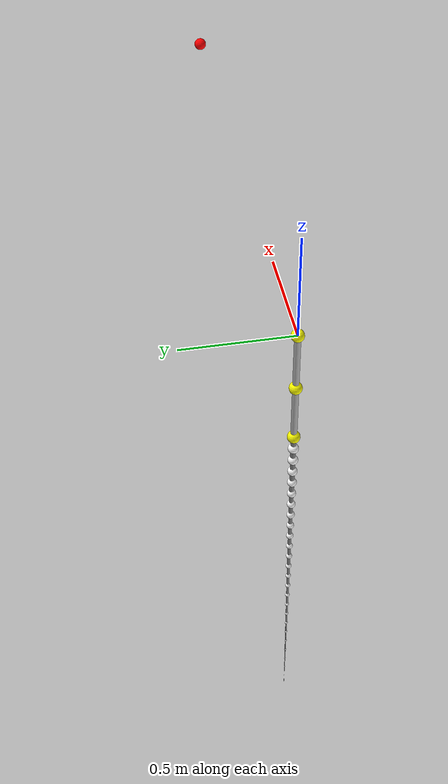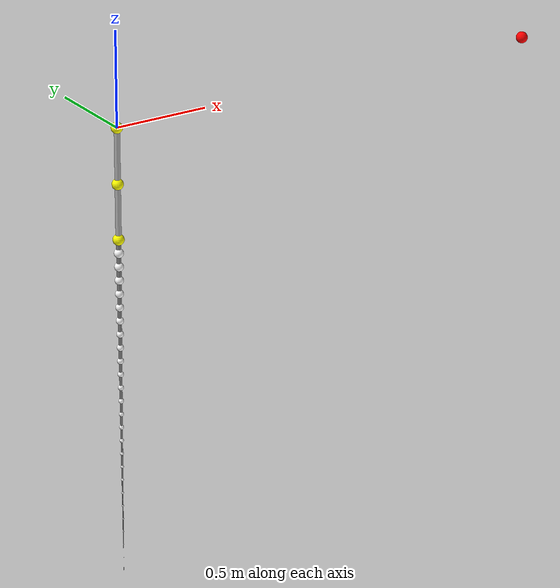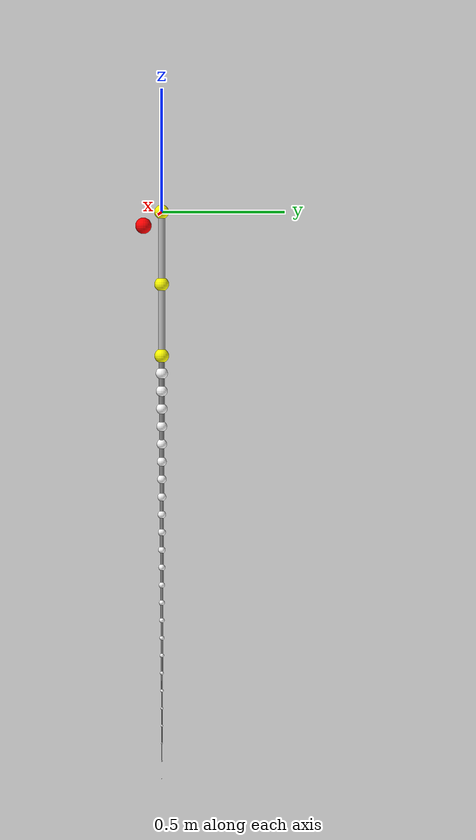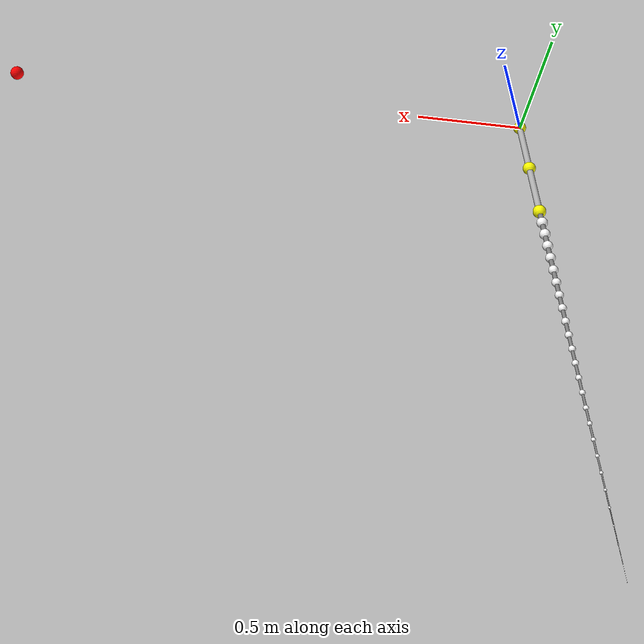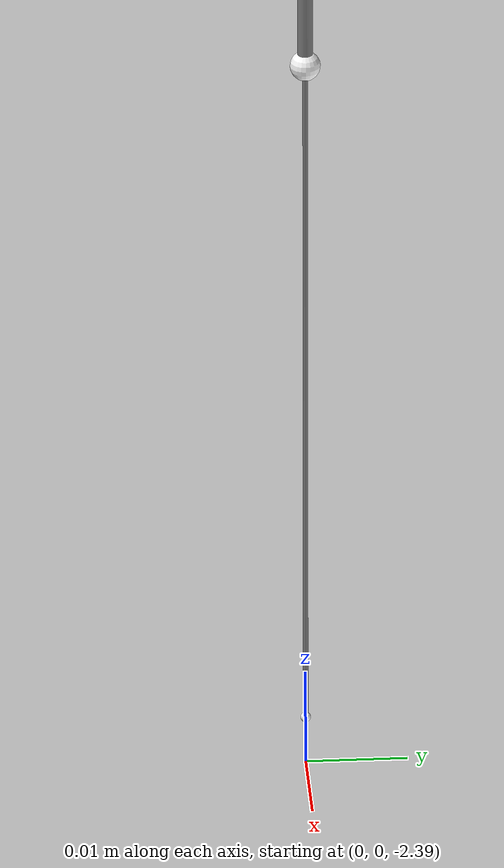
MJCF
<mujoco model="5_3D_model_w_N25_linear">
  <compiler inertiafromgeom="auto" angle="radian" />
   <option timestep="0.0001" iterations="50" solver="PGS" integrator="Euler" gravity="0 0 -9.81" collision="all">
     <flag energy="enable" />
   </option>
   <asset>
     <texture type="skybox" builtin="flat" rgb1="1 1 1" rgb2="1 1 1" width="100" height="100" />
      <material name="JointColor" rgba="1.0 1.0 0.0 1" />
      <material name="LimbColor" rgba="0.7 0.7 0.7 1" />
      <material name="pointMassColor" rgba="1.0 1.0 1.0 1.0" />
      <material name="RefMassColor" rgba="0.2 0.9 0.1 1.0" />
   </asset>
   <worldbody>
     <body name="cameramover" mocap="true" pos="0 0 0">
        <camera name="mycamera" pos="0.0 2.0 2.0" euler="1.5707 0 0" />
      </body>
      <body name="body_upper_arm" pos="0 0 0" euler="0 0 0">
        <inertial pos="0 0 -0.129" mass="1.595" diaginertia="0.011917 0.011937 0.001325" />
         <geom name="geom_shoulder" type="sphere" pos="0 0 0" material="JointColor" size="0.0294" mass="0" />
         <joint name="joint_shoulder_flex_ext" ref="0" type="hinge" stiffness="0" pos = "0 0 0" axis = "0 -1 0" />
         <joint name='joint_shoulder_add_abd' ref='0'  type='hinge' stiffness='0' pos='0 0 0' axis='-1 0 0' />
         <joint name='joint_shoulder_med_lat' ref='0'  type='hinge' stiffness='0' pos='0 0 0' axis=' 0 0 1' />
         <site name="site_upper_arm_COM" pos="0 0 -0.129" />
         <geom type="cylinder" fromto="0 0 0 0 0 -0.294" material="LimbColor" mass="0" size="0.0147" />
         <body name="body_fore_arm" pos="0 0 -0.294" euler="0 0 0">
           <inertial pos="0 0 -0.112" mass="0.869" diaginertia="0.004765 0.004855 0.000472" />
            <geom name="geom_elbow" type="sphere" pos="0 0 0" material="JointColor" size="0.0294" mass="0" />
            <joint name="joint_elbow" ref="0" type="hinge" stiffness="0" pos="0 0 0" axis="0 -1 0" />
            <geom type="cylinder" fromto="0 0 0 0 0 -0.291" material="LimbColor" mass="0" size="0.0147" />
            <site name="site_fore_arm_COM" pos="0 0 -0.112" />
            <geom name="geom_end_effector" type="sphere" pos="0 0 -0.291" material="JointColor" size="0.0294" mass="0" />
            <body name="body_node1" euler="0 0 0" pos="0 0 -0.291">
              <joint name="joint_node1_X" type="hinge" axis="1 0 0" pos="0 0 0" springref="0" stiffness="0" damping="0" />
               <joint name="joint_node1_Y" type="hinge" axis="0 -1 0" pos="0 0 0" springref="0" stiffness="0" damping="0" />
               <geom type="cylinder" fromto="0 0 0 0 0 -0.0720" size="0.0122176" mass="0" />
               <geom name="geom_1" type="sphere" material="pointMassColor" pos="0 0 -0.0720" size="0.0244352" mass="0.0345792" />
               <body name="body_node2" euler="0 0 0" pos="0 0 -0.0720">
                 <joint name="joint_node2_X" type="hinge" axis="1 0 0" pos="0 0 0" springref="0" stiffness="0.6415903999999999" damping="0.24391039999999997" />
                  <joint name="joint_node2_Y" type="hinge" axis="0 -1 0" pos="0 0 0" springref="0" stiffness="0.6415903999999999" damping="0.24391039999999997" />
                  <geom type="cylinder" fromto="0 0 0 0 0 -0.0720" size="0.0117189" mass="0" />
                  <geom name="geom_2" type="sphere" material="pointMassColor" pos="0 0 -0.0720" size="0.0234379" mass="0.0318144" />
                  <body name="body_node3" euler="0 0 0" pos="0 0 -0.0720">
                    <joint name="joint_node3_X" type="hinge" axis="1 0 0" pos="0 0 0" springref="0" stiffness="0.5881568" damping="0.2235968" />
                     <joint name="joint_node3_Y" type="hinge" axis="0 -1 0" pos="0 0 0" springref="0" stiffness="0.5881568" damping="0.2235968" />
                     <geom type="cylinder" fromto="0 0 0 0 0 -0.0720" size="0.0112203" mass="0" />
                     <geom name="geom_3" type="sphere" material="pointMassColor" pos="0 0 -0.0720" size="0.0224405" mass="0.0291648" />
                     <body name="body_node4" euler="0 0 0" pos="0 0 -0.0720">
                       <joint name="joint_node4_X" type="hinge" axis="1 0 0" pos="0 0 0" springref="0" stiffness="0.5370463999999999" damping="0.20416639999999997" />
                        <joint name="joint_node4_Y" type="hinge" axis="0 -1 0" pos="0 0 0" springref="0" stiffness="0.5370463999999999" damping="0.20416639999999997" />
                        <geom type="cylinder" fromto="0 0 0 0 0 -0.0720" size="0.0107216" mass="0" />
                        <geom name="geom_4" type="sphere" material="pointMassColor" pos="0 0 -0.0720" size="0.0214431" mass="0.0266304" />
                        <body name="body_node5" euler="0 0 0" pos="0 0 -0.0720">
                          <joint name="joint_node5_X" type="hinge" axis="1 0 0" pos="0 0 0" springref="0" stiffness="0.4882591999999999" damping="0.18561919999999998" />
                           <joint name="joint_node5_Y" type="hinge" axis="0 -1 0" pos="0 0 0" springref="0" stiffness="0.4882591999999999" damping="0.18561919999999998" />
                           <geom type="cylinder" fromto="0 0 0 0 0 -0.0720" size="0.0102229" mass="0" />
                           <geom name="geom_5" type="sphere" material="pointMassColor" pos="0 0 -0.0720" size="0.0204458" mass="0.0242112" />
                           <body name="body_node6" euler="0 0 0" pos="0 0 -0.0720">
                             <joint name="joint_node6_X" type="hinge" axis="1 0 0" pos="0 0 0" springref="0" stiffness="0.44179519999999994" damping="0.16795519999999997" />
                              <joint name="joint_node6_Y" type="hinge" axis="0 -1 0" pos="0 0 0" springref="0" stiffness="0.44179519999999994" damping="0.16795519999999997" />
                              <geom type="cylinder" fromto="0 0 0 0 0 -0.0720" size="0.0097242" mass="0" />
                              <geom name="geom_6" type="sphere" material="pointMassColor" pos="0 0 -0.0720" size="0.0194484" mass="0.0219072" />
                              <body name="body_node7" euler="0 0 0" pos="0 0 -0.0720">
                                <joint name="joint_node7_X" type="hinge" axis="1 0 0" pos="0 0 0" springref="0" stiffness="0.3976544" damping="0.15117440000000001" />
                                 <joint name="joint_node7_Y" type="hinge" axis="0 -1 0" pos="0 0 0" springref="0" stiffness="0.3976544" damping="0.15117440000000001" />
                                 <geom type="cylinder" fromto="0 0 0 0 0 -0.0720" size="0.0092255" mass="0" />
                                 <geom name="geom_7" type="sphere" material="pointMassColor" pos="0 0 -0.0720" size="0.0184511" mass="0.0197184" />
                                 <body name="body_node8" euler="0 0 0" pos="0 0 -0.0720">
                                   <joint name="joint_node8_X" type="hinge" axis="1 0 0" pos="0 0 0" springref="0" stiffness="0.3558368000000003" damping="0.13527680000000009" />
                                    <joint name="joint_node8_Y" type="hinge" axis="0 -1 0" pos="0 0 0" springref="0" stiffness="0.3558368000000003" damping="0.13527680000000009" />
                                    <geom type="cylinder" fromto="0 0 0 0 0 -0.0720" size="0.0087269" mass="0" />
                                    <geom name="geom_8" type="sphere" material="pointMassColor" pos="0 0 -0.0720" size="0.0174537" mass="0.0176448" />
                                    <body name="body_node9" euler="0 0 0" pos="0 0 -0.0720">
                                      <joint name="joint_node9_X" type="hinge" axis="1 0 0" pos="0 0 0" springref="0" stiffness="0.3163424000000002" damping="0.12026240000000007" />
                                       <joint name="joint_node9_Y" type="hinge" axis="0 -1 0" pos="0 0 0" springref="0" stiffness="0.3163424000000002" damping="0.12026240000000007" />
                                       <geom type="cylinder" fromto="0 0 0 0 0 -0.0720" size="0.0082282" mass="0" />
                                       <geom name="geom_9" type="sphere" material="pointMassColor" pos="0 0 -0.0720" size="0.0164564" mass="0.0156864" />
                                       <body name="body_node10" euler="0 0 0" pos="0 0 -0.0720">
                                         <joint name="joint_node10_X" type="hinge" axis="1 0 0" pos="0 0 0" springref="0" stiffness="0.2791711999999996" damping="0.10613119999999986" />
                                          <joint name="joint_node10_Y" type="hinge" axis="0 -1 0" pos="0 0 0" springref="0" stiffness="0.2791711999999996" damping="0.10613119999999986" />
                                          <geom type="cylinder" fromto="0 0 0 0 0 -0.0720" size="0.0077295" mass="0" />
                                          <geom name="geom_10" type="sphere" material="pointMassColor" pos="0 0 -0.0720" size="0.0154590" mass="0.0138432" />
                                          <body name="body_node11" euler="0 0 0" pos="0 0 -0.0720">
                                            <joint name="joint_node11_X" type="hinge" axis="1 0 0" pos="0 0 0" springref="0" stiffness="0.24432320000000013" damping="0.09288320000000005" />
                                             <joint name="joint_node11_Y" type="hinge" axis="0 -1 0" pos="0 0 0" springref="0" stiffness="0.24432320000000013" damping="0.09288320000000005" />
                                             <geom type="cylinder" fromto="0 0 0 0 0 -0.0720" size="0.0072308" mass="0" />
                                             <geom name="geom_11" type="sphere" material="pointMassColor" pos="0 0 -0.0720" size="0.0144617" mass="0.0121152" />
                                             <body name="body_node12" euler="0 0 0" pos="0 0 -0.0720">
                                               <joint name="joint_node12_X" type="hinge" axis="1 0 0" pos="0 0 0" springref="0" stiffness="0.21179840000000016" damping="0.08051840000000006" />
                                                <joint name="joint_node12_Y" type="hinge" axis="0 -1 0" pos="0 0 0" springref="0" stiffness="0.21179840000000016" damping="0.08051840000000006" />
                                                <geom type="cylinder" fromto="0 0 0 0 0 -0.0720" size="0.0067322" mass="0" />
                                                <geom name="geom_12" type="sphere" material="pointMassColor" pos="0 0 -0.0720" size="0.0134643" mass="0.0105024" />
                                                <body name="body_node13" euler="0 0 0" pos="0 0 -0.0720">
                                                  <joint name="joint_node13_X" type="hinge" axis="1 0 0" pos="0 0 0" springref="0" stiffness="0.1815968000000001" damping="0.06903680000000004" />
                                                   <joint name="joint_node13_Y" type="hinge" axis="0 -1 0" pos="0 0 0" springref="0" stiffness="0.1815968000000001" damping="0.06903680000000004" />
                                                   <geom type="cylinder" fromto="0 0 0 0 0 -0.0720" size="0.0062335" mass="0" />
                                                   <geom name="geom_13" type="sphere" material="pointMassColor" pos="0 0 -0.0720" size="0.0124669" mass="0.0090048" />
                                                   <body name="body_node14" euler="0 0 0" pos="0 0 -0.0720">
                                                     <joint name="joint_node14_X" type="hinge" axis="1 0 0" pos="0 0 0" springref="0" stiffness="0.15371840000000014" damping="0.05843840000000006" />
                                                      <joint name="joint_node14_Y" type="hinge" axis="0 -1 0" pos="0 0 0" springref="0" stiffness="0.15371840000000014" damping="0.05843840000000006" />
                                                      <geom type="cylinder" fromto="0 0 0 0 0 -0.0720" size="0.0057348" mass="0" />
                                                      <geom name="geom_14" type="sphere" material="pointMassColor" pos="0 0 -0.0720" size="0.0114696" mass="0.0076224" />
                                                      <body name="body_node15" euler="0 0 0" pos="0 0 -0.0720">
                                                        <joint name="joint_node15_X" type="hinge" axis="1 0 0" pos="0 0 0" springref="0" stiffness="0.12816320000000012" damping="0.04872320000000004" />
                                                         <joint name="joint_node15_Y" type="hinge" axis="0 -1 0" pos="0 0 0" springref="0" stiffness="0.12816320000000012" damping="0.04872320000000004" />
                                                         <geom type="cylinder" fromto="0 0 0 0 0 -0.0720" size="0.0052361" mass="0" />
                                                         <geom name="geom_15" type="sphere" material="pointMassColor" pos="0 0 -0.0720" size="0.0104722" mass="0.0063552" />
                                                         <body name="body_node16" euler="0 0 0" pos="0 0 -0.0720">
                                                           <joint name="joint_node16_X" type="hinge" axis="1 0 0" pos="0 0 0" springref="0" stiffness="0.10493120000000007" damping="0.03989120000000002" />
                                                            <joint name="joint_node16_Y" type="hinge" axis="0 -1 0" pos="0 0 0" springref="0" stiffness="0.10493120000000007" damping="0.03989120000000002" />
                                                            <geom type="cylinder" fromto="0 0 0 0 0 -0.0720" size="0.0047374" mass="0" />
                                                            <geom name="geom_16" type="sphere" material="pointMassColor" pos="0 0 -0.0720" size="0.0094749" mass="0.0052032" />
                                                            <body name="body_node17" euler="0 0 0" pos="0 0 -0.0720">
                                                              <joint name="joint_node17_X" type="hinge" axis="1 0 0" pos="0 0 0" springref="0" stiffness="0.08402240000000002" damping="0.03194240000000001" />
                                                               <joint name="joint_node17_Y" type="hinge" axis="0 -1 0" pos="0 0 0" springref="0" stiffness="0.08402240000000002" damping="0.03194240000000001" />
                                                               <geom type="cylinder" fromto="0 0 0 0 0 -0.0720" size="0.0042388" mass="0" />
                                                               <geom name="geom_17" type="sphere" material="pointMassColor" pos="0 0 -0.0720" size="0.0084775" mass="0.0041664" />
                                                               <body name="body_node18" euler="0 0 0" pos="0 0 -0.0720">
                                                                 <joint name="joint_node18_X" type="hinge" axis="1 0 0" pos="0 0 0" springref="0" stiffness="0.06543680000000003" damping="0.024876800000000008" />
                                                                  <joint name="joint_node18_Y" type="hinge" axis="0 -1 0" pos="0 0 0" springref="0" stiffness="0.06543680000000003" damping="0.024876800000000008" />
                                                                  <geom type="cylinder" fromto="0 0 0 0 0 -0.0720" size="0.0037401" mass="0" />
                                                                  <geom name="geom_18" type="sphere" material="pointMassColor" pos="0 0 -0.0720" size="0.0074802" mass="0.0032448" />
                                                                  <body name="body_node19" euler="0 0 0" pos="0 0 -0.0720">
                                                                    <joint name="joint_node19_X" type="hinge" axis="1 0 0" pos="0 0 0" springref="0" stiffness="0.049174400000000035" damping="0.018694400000000014" />
                                                                     <joint name="joint_node19_Y" type="hinge" axis="0 -1 0" pos="0 0 0" springref="0" stiffness="0.049174400000000035" damping="0.018694400000000014" />
                                                                     <geom type="cylinder" fromto="0 0 0 0 0 -0.0720" size="0.0032414" mass="0" />
                                                                     <geom name="geom_19" type="sphere" material="pointMassColor" pos="0 0 -0.0720" size="0.0064828" mass="0.0024384" />
                                                                     <body name="body_node20" euler="0 0 0" pos="0 0 -0.0720">
                                                                       <joint name="joint_node20_X" type="hinge" axis="1 0 0" pos="0 0 0" springref="0" stiffness="0.03523520000000002" damping="0.013395200000000008" />
                                                                        <joint name="joint_node20_Y" type="hinge" axis="0 -1 0" pos="0 0 0" springref="0" stiffness="0.03523520000000002" damping="0.013395200000000008" />
                                                                        <geom type="cylinder" fromto="0 0 0 0 0 -0.0720" size="0.0027427" mass="0" />
                                                                        <geom name="geom_20" type="sphere" material="pointMassColor" pos="0 0 -0.0720" size="0.0054855" mass="0.0017472" />
                                                                        <body name="body_node21" euler="0 0 0" pos="0 0 -0.0720">
                                                                          <joint name="joint_node21_X" type="hinge" axis="1 0 0" pos="0 0 0" springref="0" stiffness="0.0236192" damping="0.0089792" />
                                                                           <joint name="joint_node21_Y" type="hinge" axis="0 -1 0" pos="0 0 0" springref="0" stiffness="0.0236192" damping="0.0089792" />
                                                                           <geom type="cylinder" fromto="0 0 0 0 0 -0.0720" size="0.0022441" mass="0" />
                                                                           <geom name="geom_21" type="sphere" material="pointMassColor" pos="0 0 -0.0720" size="0.0044881" mass="0.0011712" />
                                                                           <body name="body_node22" euler="0 0 0" pos="0 0 -0.0720">
                                                                             <joint name="joint_node22_X" type="hinge" axis="1 0 0" pos="0 0 0" springref="0" stiffness="0.014326400000000017" damping="0.005446400000000007" />
                                                                              <joint name="joint_node22_Y" type="hinge" axis="0 -1 0" pos="0 0 0" springref="0" stiffness="0.014326400000000017" damping="0.005446400000000007" />
                                                                              <geom type="cylinder" fromto="0 0 0 0 0 -0.0720" size="0.0017454" mass="0" />
                                                                              <geom name="geom_22" type="sphere" material="pointMassColor" pos="0 0 -0.0720" size="0.0034907" mass="0.0007104" />
                                                                              <body name="body_node23" euler="0 0 0" pos="0 0 -0.0720">
                                                                                <joint name="joint_node23_X" type="hinge" axis="1 0 0" pos="0 0 0" springref="0" stiffness="0.007356800000000006" damping="0.002796800000000002" />
                                                                                 <joint name="joint_node23_Y" type="hinge" axis="0 -1 0" pos="0 0 0" springref="0" stiffness="0.007356800000000006" damping="0.002796800000000002" />
                                                                                 <geom type="cylinder" fromto="0 0 0 0 0 -0.0720" size="0.0012467" mass="0" />
                                                                                 <geom name="geom_23" type="sphere" material="pointMassColor" pos="0 0 -0.0720" size="0.0024934" mass="0.0003648" />
                                                                                 <body name="body_node24" euler="0 0 0" pos="0 0 -0.0720">
                                                                                   <joint name="joint_node24_X" type="hinge" axis="1 0 0" pos="0 0 0" springref="0" stiffness="0.002710400000000001" damping="0.0010304000000000003" />
                                                                                    <joint name="joint_node24_Y" type="hinge" axis="0 -1 0" pos="0 0 0" springref="0" stiffness="0.002710400000000001" damping="0.0010304000000000003" />
                                                                                    <geom type="cylinder" fromto="0 0 0 0 0 -0.0720" size="0.0007480" mass="0" />
                                                                                    <geom name="geom_24" type="sphere" material="pointMassColor" pos="0 0 -0.0720" size="0.0014960" mass="0.0001344" />
                                                                                    <body name="body_node25" euler="0 0 0" pos="0 0 -0.0720">
                                                                                      <joint name="joint_node25_X" type="hinge" axis="1 0 0" pos="0 0 0" springref="0" stiffness="0.0003871999999999983" damping="0.00014719999999999935" />
                                                                                       <joint name="joint_node25_Y" type="hinge" axis="0 -1 0" pos="0 0 0" springref="0" stiffness="0.0003871999999999983" damping="0.00014719999999999935" />
                                                                                       <geom type="cylinder" fromto="0 0 0 0 0 -0.0720" size="0.0002493" mass="0" />
                                                                                       <geom name="geom_25_tip" type="sphere" material="pointMassColor" pos="0 0 -0.0720" size="0.0004987" mass="0.0000192" />
                                                                                    </body>
                                                                                 </body>
                                                                              </body>
                                                                           </body>
                                                                        </body>
                                                                     </body>
                                                                  </body>
                                                               </body>
                                                            </body>
                                                         </body>
                                                      </body>
                                                   </body>
                                                </body>
                                             </body>
                                          </body>
                                       </body>
                                    </body>
                                 </body>
                              </body>
                           </body>
                        </body>
                     </body>
                  </body>
               </body>
            </body>
            <!-- === [ N, L, M, k, b, rho ] = [25,1.800000,0.300000,0.242000,0.092000,1.000000] -->
         </body>
      </body>
      <geom name="geom_target" type="sphere" pos="2.395 0 0" rgba="1 0 0 1" mass="0" size="0.03"  />

     </worldbody>

     <actuator>
        <motor joint="joint_shoulder_flex_ext" name="motor_shoulder_flex_ext" forcelimited="false" />
        <motor joint="joint_shoulder_add_abd"  name="motor_shoulder_add_abd"  forcelimited="false" />
        <motor joint="joint_shoulder_med_lat"  name="motor_shoulder_med_lat"  forcelimited="false" />
        <motor joint="joint_elbow" 						 name="motor_elbow" 						forcelimited="false" />
     </actuator>
</mujoco>
